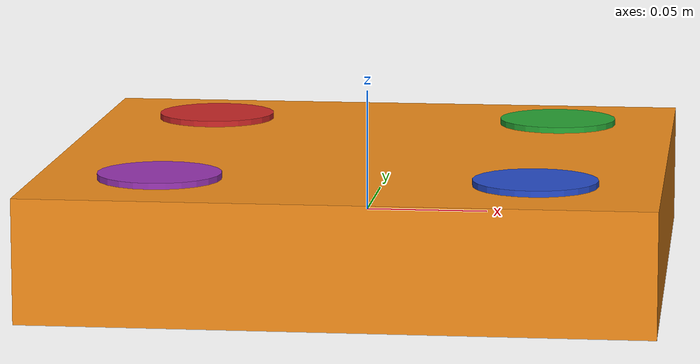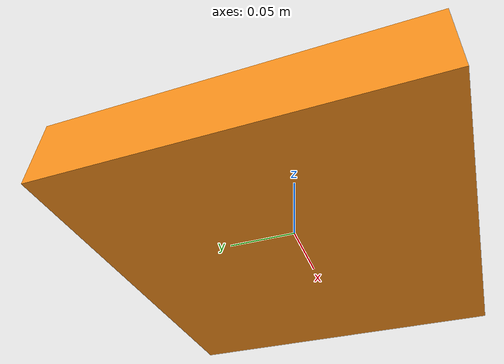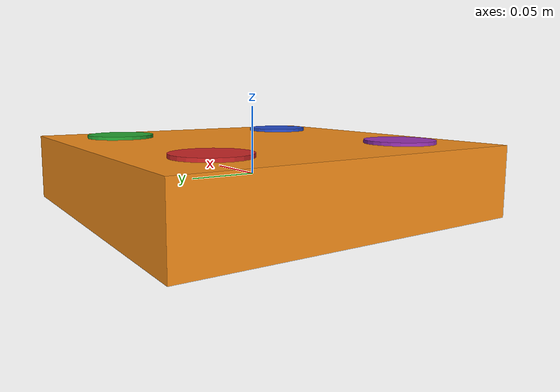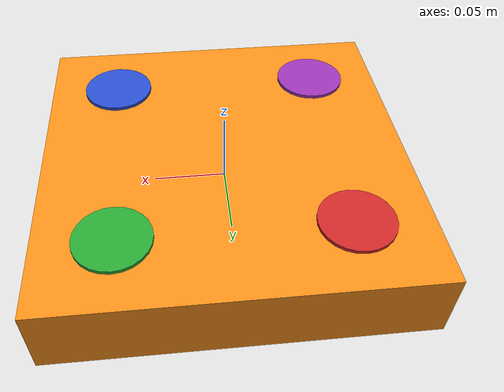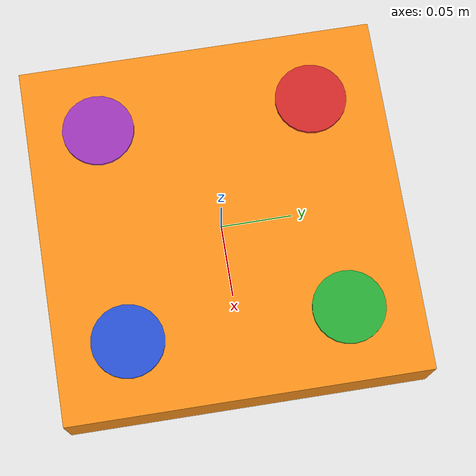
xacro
<?xml version="1.0"?>
<robot name="platform" xmlns:xacro="http://www.ros.org/wiki/xacro">

    <gazebo reference="object">
        <mu1>0.2</mu1>
        <mu2>0.2</mu2>
        <material>Gazebo/Orange</material>
    </gazebo>

    <gazebo reference="circle1">
        <mu1>0.2</mu1>
        <mu2>0.2</mu2>
        <material>Gazebo/Red</material>
    </gazebo>

    <gazebo reference="circle2">
        <mu1>0.2</mu1>
        <mu2>0.2</mu2>
        <material>Gazebo/DarkGreen</material>
    </gazebo>

    <gazebo reference="circle3">
        <mu1>0.2</mu1>
        <mu2>0.2</mu2>
        <material>Gazebo/Blue</material>
    </gazebo>

    <gazebo reference="circle4">
        <mu1>0.2</mu1>
        <mu2>0.2</mu2>
        <material>Gazebo/Purple</material>
    </gazebo>
	<xacro:property name="PI" value="3.1415926535897931"/>
	<xacro:property name="objectLength" value="0.25"/>
	<xacro:property name="objectWidth" value="0.25"/>
	<xacro:property name="objectHeight" value="0.05"/>
    <xacro:property name="world_offset" value="0.0"/>
    <xacro:property name="circle_offset" value="0.075"/>
    <xacro:property name="circleRadius" value="0.025"/>
    <xacro:property name="circleHeight" value="0.005"/>
	<xacro:property name="mass" value="1"/>

	<link name="world"/>

	<joint name="fixed" type="fixed">
		<parent link="world"/>
		<child link="object"/>
	</joint>

	<link name="object">

		<collision>
			<origin xyz="0 0 0" rpy="0 0 0"/>
			<geometry>
				<box size="${objectLength} ${objectWidth} ${objectHeight}"/>
			</geometry>
		</collision>
		<visual>
			<origin xyz="0 0 0" rpy="0 0 0"/>
			<geometry>
				<box size="${objectLength} ${objectWidth} ${objectHeight}"/>
			</geometry>
		</visual>
		<inertial>
			<origin xyz="0 0 0" rpy="0 0 0"/>
			<mass value="1"/>
			<inertia
			  ixx="${mass / 12.0 * (objectHeight*objectHeight + objectLength*objectLength)}" ixy="0.0" ixz="0.0"
			  iyy="${mass / 12.0 * (objectHeight*objectHeight + objectWidth*objectWidth)}" iyz="0.0"
			  izz="${mass / 12.0 * (objectWidth*objectWidth + objectLength*objectLength)}"/>
		</inertial>
	</link>

    <joint name="fixed1" type="fixed">
		<parent link="object"/>
		<child link="circle1"/>
	</joint>

    <link name="circle1">
        <collision>
            <origin xyz="${world_offset-circle_offset} ${circle_offset} ${objectHeight/2.0}" rpy="0 0 0"/>
            <geometry>
                <cylinder length="${circleHeight}" radius="${circleRadius}"/>
            </geometry>
        </collision>

        <visual>
            <origin xyz="${world_offset-circle_offset} ${circle_offset} ${objectHeight/2.0}" rpy="0 0 0"/>
            <geometry>
                <cylinder length="${circleHeight}" radius="${circleRadius}"/>
            </geometry>
        </visual>

        <inertial>
			<origin xyz="${world_offset-circle_offset} ${circle_offset} ${objectHeight/2.0}" rpy="0 0 0"/>
			<mass value="1"/>
			<inertia
			  ixx="${mass / 12.0 * (3*circleRadius*circleRadius + circleHeight*circleHeight)}" ixy="0.0" ixz="0.0"
			  iyy="${mass / 12.0 * (3*circleRadius*circleRadius + circleHeight*circleHeight)}" iyz="0.0"
			  izz="${mass / 2.0 * (circleRadius*circleRadius)}"/>
		</inertial>
    </link>

    <joint name="fixed2" type="fixed">
		<parent link="object"/>
		<child link="circle2"/>
	</joint>

    <link name="circle2">
        <collision>
            <origin xyz="${world_offset+circle_offset} ${circle_offset} ${objectHeight/2.0}" rpy="0 0 0"/>
            <geometry>
                <cylinder length="${circleHeight}" radius="${circleRadius}"/>
            </geometry>
        </collision>

        <visual>
            <origin xyz="${world_offset+circle_offset} ${circle_offset} ${objectHeight/2.0}" rpy="0 0 0"/>
            <geometry>
                <cylinder length="${circleHeight}" radius="${circleRadius}"/>
            </geometry>
        </visual>

        <inertial>
			<origin xyz="${world_offset+circle_offset} ${circle_offset} ${objectHeight/2.0}" rpy="0 0 0"/>
			<mass value="1"/>
			<inertia
			  ixx="${mass / 12.0 * (3*circleRadius*circleRadius + circleHeight*circleHeight)}" ixy="0.0" ixz="0.0"
			  iyy="${mass / 12.0 * (3*circleRadius*circleRadius + circleHeight*circleHeight)}" iyz="0.0"
			  izz="${mass / 2.0 * (circleRadius*circleRadius)}"/>
		</inertial>
    </link>

    <joint name="fixed3" type="fixed">
		<parent link="object"/>
		<child link="circle3"/>
	</joint>

    <link name="circle3">
        <collision>
            <origin xyz="${world_offset+circle_offset} ${-circle_offset} ${objectHeight/2.0}" rpy="0 0 0"/>
            <geometry>
                <cylinder length="${circleHeight}" radius="${circleRadius}"/>
            </geometry>
        </collision>

        <visual>
            <origin xyz="${world_offset+circle_offset} ${-circle_offset} ${objectHeight/2.0}" rpy="0 0 0"/>
            <geometry>
                <cylinder length="${circleHeight}" radius="${circleRadius}"/>
            </geometry>
        </visual>

        <inertial>
			<origin xyz="${world_offset+circle_offset} ${-circle_offset} ${objectHeight/2.0}" rpy="0 0 0"/>
			<mass value="1"/>
			<inertia
			  ixx="${mass / 12.0 * (3*circleRadius*circleRadius + circleHeight*circleHeight)}" ixy="0.0" ixz="0.0"
			  iyy="${mass / 12.0 * (3*circleRadius*circleRadius + circleHeight*circleHeight)}" iyz="0.0"
			  izz="${mass / 2.0 * (circleRadius*circleRadius)}"/>
		</inertial>
    </link>

    <joint name="fixed4" type="fixed">
		<parent link="object"/>
		<child link="circle4"/>
	</joint>

    <link name="circle4">
        <collision>
            <origin xyz="${world_offset-circle_offset} ${-circle_offset} ${objectHeight/2.0}" rpy="0 0 0"/>
            <geometry>
                <cylinder length="${circleHeight}" radius="${circleRadius}"/>
            </geometry>
        </collision>

        <visual>
            <origin xyz="${world_offset-circle_offset} ${-circle_offset} ${objectHeight/2.0}" rpy="0 0 0"/>
            <geometry>
                <cylinder length="${circleHeight}" radius="${circleRadius}"/>
            </geometry>
        </visual>

        <inertial>
			<origin xyz="${world_offset-circle_offset} ${-circle_offset} ${objectHeight/2.0}" rpy="0 0 0"/>
			<mass value="1"/>
			<inertia
			  ixx="${mass / 12.0 * (3*circleRadius*circleRadius + circleHeight*circleHeight)}" ixy="0.0" ixz="0.0"
			  iyy="${mass / 12.0 * (3*circleRadius*circleRadius + circleHeight*circleHeight)}" iyz="0.0"
			  izz="${mass / 2.0 * (circleRadius*circleRadius)}"/>
		</inertial>
    </link>
</robot>
